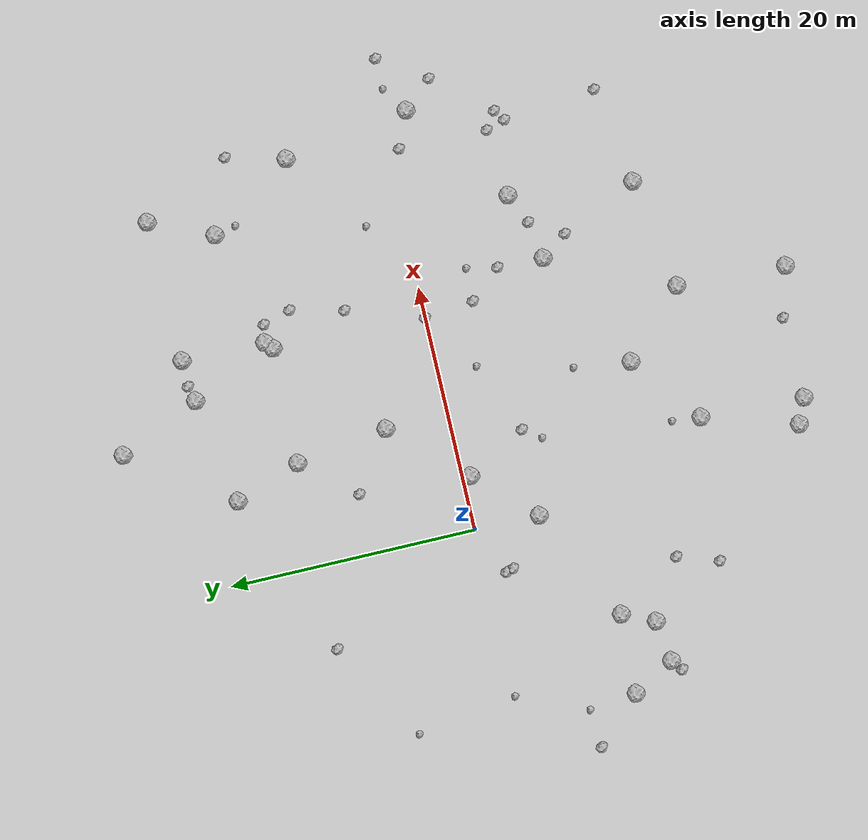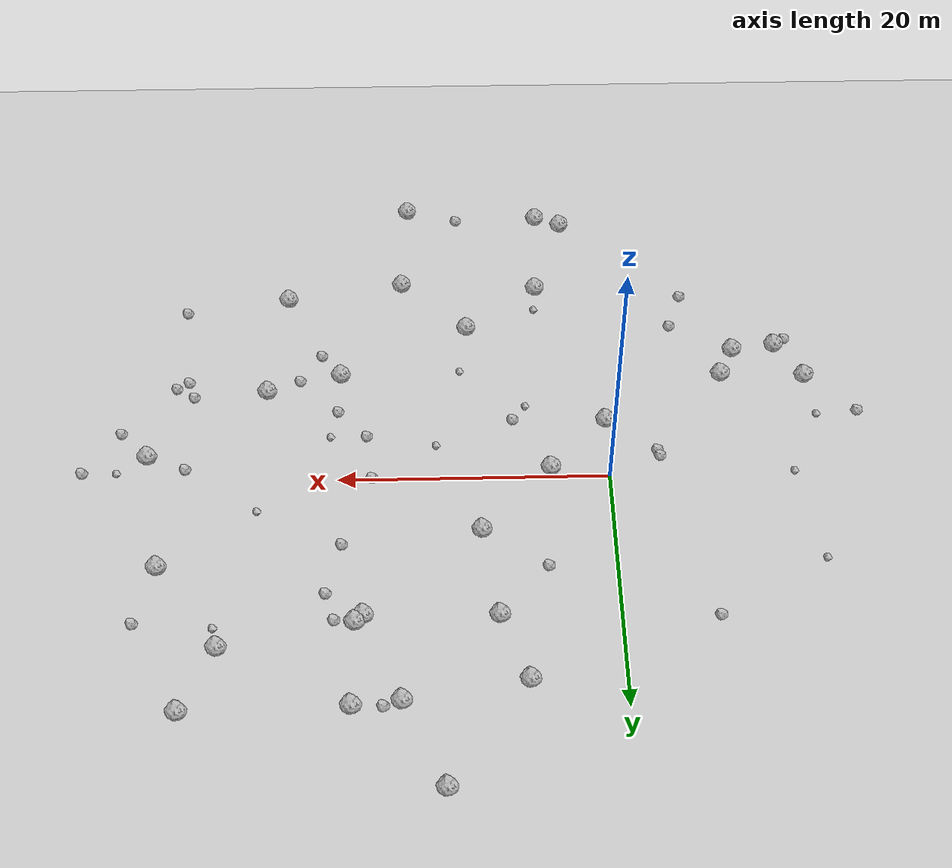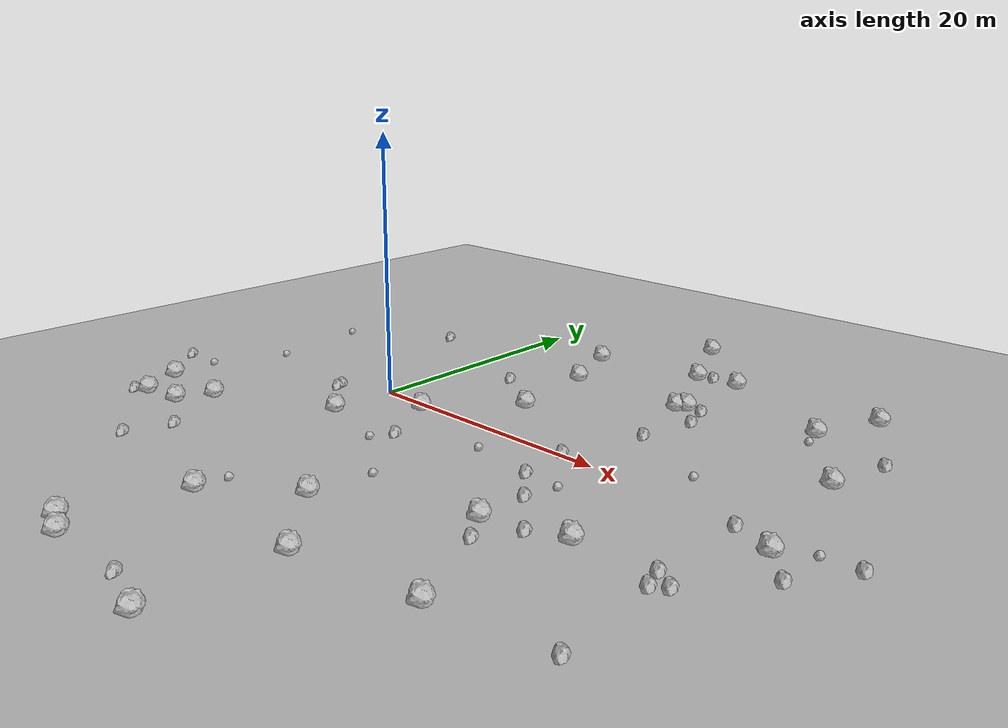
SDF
<sdf version="1.6">
 <world name="default">
  <include><uri>model://custom_ground</uri></include>
  <include><uri>model://sun</uri></include>
  <model name="rock1_0_0">
   <include><uri>model://rock1</uri><pose>9.564523827752975 5.094321014892564 0.5 0 0 0</pose></include>
  </model>
  <model name="rock1_0_1">
   <include><uri>model://rock1</uri><pose>15.490959533154047 -20.23040955230735 0.5 0 0 0</pose></include>
  </model>
  <model name="rock1_0_2">
   <include><uri>model://rock1</uri><pose>4.356708657687786 -0.6656469186276084 0.5 0 0 0</pose></include>
  </model>
  <model name="rock1_0_3">
   <include><uri>model://rock1</uri><pose>2.4416432252713136 -27.23035215243028 0.5 0 0 0</pose></include>
  </model>
  <model name="rock1_0_4">
   <include><uri>model://rock1</uri><pose>-15.521468803670103 -9.591491143482521 0.5 0 0 0</pose></include>
  </model>
  <model name="rock1_0_5">
   <include><uri>model://rock1</uri><pose>20.092193597775328 -10.289857489389838 0.5 0 0 0</pose></include>
  </model>
  <model name="rock1_0_6">
   <include><uri>model://rock1</uri><pose>12.252080185790994 26.04387670792694 0.5 0 0 0</pose></include>
  </model>
  <model name="rock1_0_7">
   <include><uri>model://rock1</uri><pose>24.492401627483737 -18.694061499063288 0.5 0 0 0</pose></include>
  </model>
  <model name="rock1_0_8">
   <include><uri>model://rock1</uri><pose>6.590274452478532 17.907130010985526 0.5 0 0 0</pose></include>
  </model>
  <model name="rock1_0_9">
   <include><uri>model://rock1</uri><pose>18.50009138023185 12.99983001199265 0.5 0 0 0</pose></include>
  </model>
  <model name="rock1_0_10">
   <include><uri>model://rock1</uri><pose>0.03575411385764937 -5.2928400045273065 0.5 0 0 0</pose></include>
  </model>
  <model name="rock1_0_11">
   <include><uri>model://rock1</uri><pose>25.65803336165512 -8.676368935320244 0.5 0 0 0</pose></include>
  </model>
  <model name="rock1_0_12">
   <include><uri>model://rock1</uri><pose>15.199730132528614 19.43091984248263 0.5 0 0 0</pose></include>
  </model>
  <model name="rock1_0_13">
   <include><uri>model://rock1</uri><pose>4.780271661619857 -19.682573709588105 0.5 0 0 0</pose></include>
  </model>
  <model name="rock1_0_14">
   <include><uri>model://rock1</uri><pose>4.436812157511788 -28.08354186326621 0.5 0 0 0</pose></include>
  </model>
  <model name="rock1_0_15">
   <include><uri>model://rock1</uri><pose>-9.123235903372196 -9.880937942871103 0.5 0 0 0</pose></include>
  </model>
  <model name="rock1_0_16">
   <include><uri>model://rock1</uri><pose>27.843062586336522 14.960507357459207 0.5 0 0 0</pose></include>
  </model>
  <model name="rock1_0_17">
   <include><uri>model://rock1</uri><pose>-13.6227602563211 -12.932042573311051 0.5 0 0 0</pose></include>
  </model>
  <model name="rock1_0_18">
   <include><uri>model://rock1</uri><pose>30.080850789474745 20.040743734302673 0.5 0 0 0</pose></include>
  </model>
  <model name="rock1_0_19">
   <include><uri>model://rock1</uri><pose>17.920314388842492 12.452141510641198 0.5 0 0 0</pose></include>
  </model>
  <model name="rock1_0_20">
   <include><uri>model://rock1</uri><pose>15.08325635554845 -29.08514662835005 0.5 0 0 0</pose></include>
  </model>
  <model name="rock1_0_21">
   <include><uri>model://rock1</uri><pose>34.20525443557368 -2.245063065328111 0.5 0 0 0</pose></include>
  </model>
  <model name="rock1_0_22">
   <include><uri>model://rock1</uri><pose>18.586211424495957 19.777590545055986 0.5 0 0 0</pose></include>
  </model>
  <model name="rock1_0_23">
   <include><uri>model://rock1</uri><pose>8.489145011078246 12.578778452297108 0.5 0 0 0</pose></include>
  </model>
  <model name="rock1_0_24">
   <include><uri>model://rock1</uri><pose>10.377300779304935 -15.250227414822293 0.5 0 0 0</pose></include>
  </model>
  <model name="rock1_0_25">
   <include><uri>model://rock1</uri><pose>-10.298240148979872 -12.466246657896274 0.5 0 0 0</pose></include>
  </model>
  <model name="rock1_0_26">
   <include><uri>model://rock1</uri><pose>32.55054588746187 8.031460850171783 0.5 0 0 0</pose></include>
  </model>
  <model name="rock2_0_0">
   <include><uri>model://rock2</uri><pose>-5.670123717028035 -15.208162148627482 0.3 0 0 0</pose></include>
  </model>
  <model name="rock2_0_1">
   <include><uri>model://rock2</uri><pose>33.774100410809034 12.82452802511716 0.3 0 0 0</pose></include>
  </model>
  <model name="rock2_0_2">
   <include><uri>model://rock2</uri><pose>7.0327504779760055 -5.492288063724914 0.3 0 0 0</pose></include>
  </model>
  <model name="rock2_0_3">
   <include><uri>model://rock2</uri><pose>32.57583246021899 -9.137186840203082 0.3 0 0 0</pose></include>
  </model>
  <model name="rock2_0_4">
   <include><uri>model://rock2</uri><pose>32.439377817399816 -17.36758208020455 0.3 0 0 0</pose></include>
  </model>
  <model name="rock2_0_5">
   <include><uri>model://rock2</uri><pose>-3.63606438444306 -2.2832894989374104 0.3 0 0 0</pose></include>
  </model>
  <model name="rock2_0_6">
   <include><uri>model://rock2</uri><pose>11.04294150322145 -27.94533671604318 0.3 0 0 0</pose></include>
  </model>
  <model name="rock2_0_7">
   <include><uri>model://rock2</uri><pose>-6.786107799804633 -18.528581062617146 0.3 0 0 0</pose></include>
  </model>
  <model name="rock2_0_8">
   <include><uri>model://rock2</uri><pose>31.176636167455733 -8.21785001183412 0.3 0 0 0</pose></include>
  </model>
  <model name="rock2_0_9">
   <include><uri>model://rock2</uri><pose>36.32656203523436 -4.604336345479169 0.3 0 0 0</pose></include>
  </model>
  <model name="rock2_0_10">
   <include><uri>model://rock2</uri><pose>-19.095588393752926 -5.951334157035404 0.3 0 0 0</pose></include>
  </model>
  <model name="rock2_0_11">
   <include><uri>model://rock2</uri><pose>-3.8015756186429215 -1.7083425023138972 0.3 0 0 0</pose></include>
  </model>
  <model name="rock2_0_12">
   <include><uri>model://rock2</uri><pose>19.923720314270206 12.774347953575699 0.3 0 0 0</pose></include>
  </model>
  <model name="rock2_0_13">
   <include><uri>model://rock2</uri><pose>20.178776177229082 -6.535020431985082 0.3 0 0 0</pose></include>
  </model>
  <model name="rock2_0_14">
   <include><uri>model://rock2</uri><pose>16.44440572101945 19.794909443157458 0.3 0 0 0</pose></include>
  </model>
  <model name="rock2_0_15">
   <include><uri>model://rock2</uri><pose>-6.747081953911371 12.83032918544938 0.3 0 0 0</pose></include>
  </model>
  <model name="rock2_0_16">
   <include><uri>model://rock2</uri><pose>23.179167259088743 -9.772708127897936 0.3 0 0 0</pose></include>
  </model>
  <model name="rock2_0_17">
   <include><uri>model://rock2</uri><pose>21.60915521346017 -12.42709274722769 0.3 0 0 0</pose></include>
  </model>
  <model name="rock2_0_18">
   <include><uri>model://rock2</uri><pose>31.296544119240984 -1.0030966770816505 0.3 0 0 0</pose></include>
  </model>
  <model name="rock2_0_19">
   <include><uri>model://rock2</uri><pose>19.5755766502228 6.209607871527311 0.3 0 0 0</pose></include>
  </model>
  <model name="rock2_0_20">
   <include><uri>model://rock2</uri><pose>20.58640650243678 10.508824009496827 0.3 0 0 0</pose></include>
  </model>
  <model name="rock2_0_21">
   <include><uri>model://rock2</uri><pose>38.84995485512147 -0.781922781855954 0.3 0 0 0</pose></include>
  </model>
  <model name="rock2_0_22">
   <include><uri>model://rock2</uri><pose>4.916366680805211 8.351901336654393 0.3 0 0 0</pose></include>
  </model>
  <model name="rock2_0_23">
   <include><uri>model://rock2</uri><pose>-14.537433039009187 -13.612017809277965 0.3 0 0 0</pose></include>
  </model>
  <model name="rock2_0_24">
   <include><uri>model://rock2</uri><pose>17.519349512136984 0.03979486302878499 0.3 0 0 0</pose></include>
  </model>
  <model name="rock2_0_25">
   <include><uri>model://rock2</uri><pose>31.685529896800936 -9.776096125247783 0.3 0 0 0</pose></include>
  </model>
  <model name="rock2_0_26">
   <include><uri>model://rock2</uri><pose>17.977082560410167 -4.006704637398055 0.3 0 0 0</pose></include>
  </model>
  <model name="rock3_0_0">
   <include><uri>model://rock3</uri><pose>-14.844104685150377 7.94571453450753 0.2 0 0 0</pose></include>
  </model>
  <model name="rock3_0_1">
   <include><uri>model://rock3</uri><pose>4.931877769137415 -17.393434936442773 0.2 0 0 0</pose></include>
  </model>
  <model name="rock3_0_2">
   <include><uri>model://rock3</uri><pose>-16.029605818827914 -5.759766027018255 0.2 0 0 0</pose></include>
  </model>
  <model name="rock3_0_3">
   <include><uri>model://rock3</uri><pose>10.907827281589146 -10.68788934718927 0.2 0 0 0</pose></include>
  </model>
  <model name="rock3_0_4">
   <include><uri>model://rock3</uri><pose>25.76418146279446 2.96666194920995 0.2 0 0 0</pose></include>
  </model>
  <model name="rock3_0_5">
   <include><uri>model://rock3</uri><pose>5.988683114100709 -6.953942090574319 0.2 0 0 0</pose></include>
  </model>
  <model name="rock3_0_6">
   <include><uri>model://rock3</uri><pose>28.18791134015573 13.21163745642157 0.2 0 0 0</pose></include>
  </model>
  <model name="rock3_0_7">
   <include><uri>model://rock3</uri><pose>12.770307739833754 -3.1176872664892024 0.2 0 0 0</pose></include>
  </model>
  <model name="rock3_0_8">
   <include><uri>model://rock3</uri><pose>-13.632435739043803 -0.15776264339557855 0.2 0 0 0</pose></include>
  </model>
  <model name="rock3_0_9">
   <include><uri>model://rock3</uri><pose>20.64617691449653 -4.103092210028912 0.2 0 0 0</pose></include>
  </model>
  <model name="rock3_0_10">
   <include><uri>model://rock3</uri><pose>36.290530482356424 -0.8333708867995853 0.2 0 0 0</pose></include>
  </model>
 </world>
</sdf>
